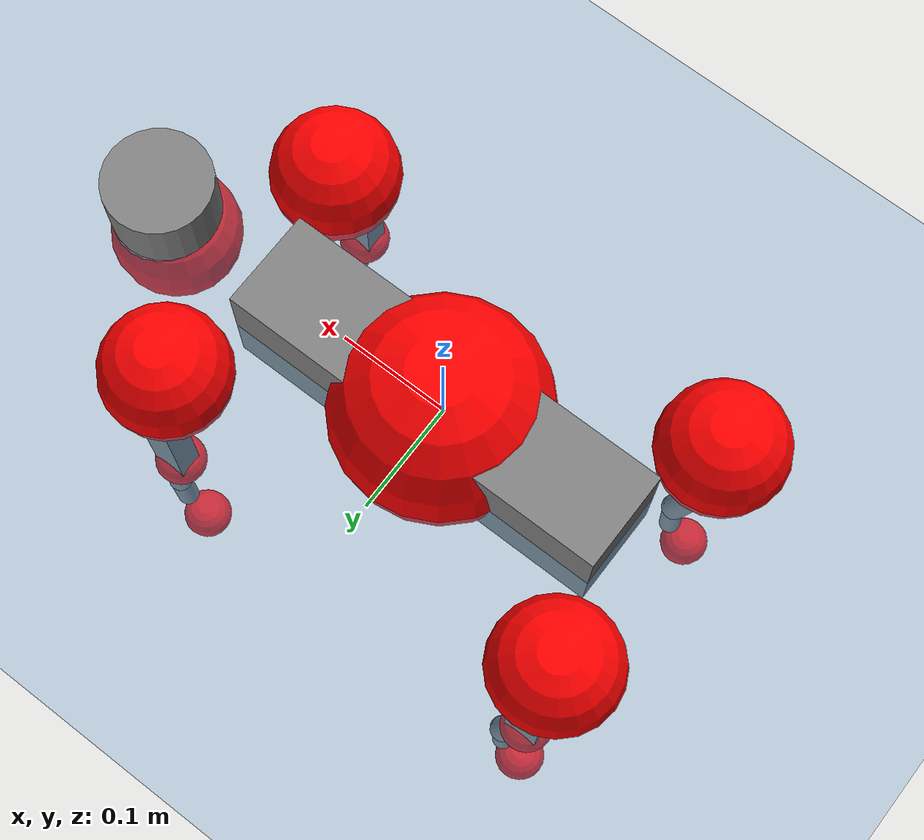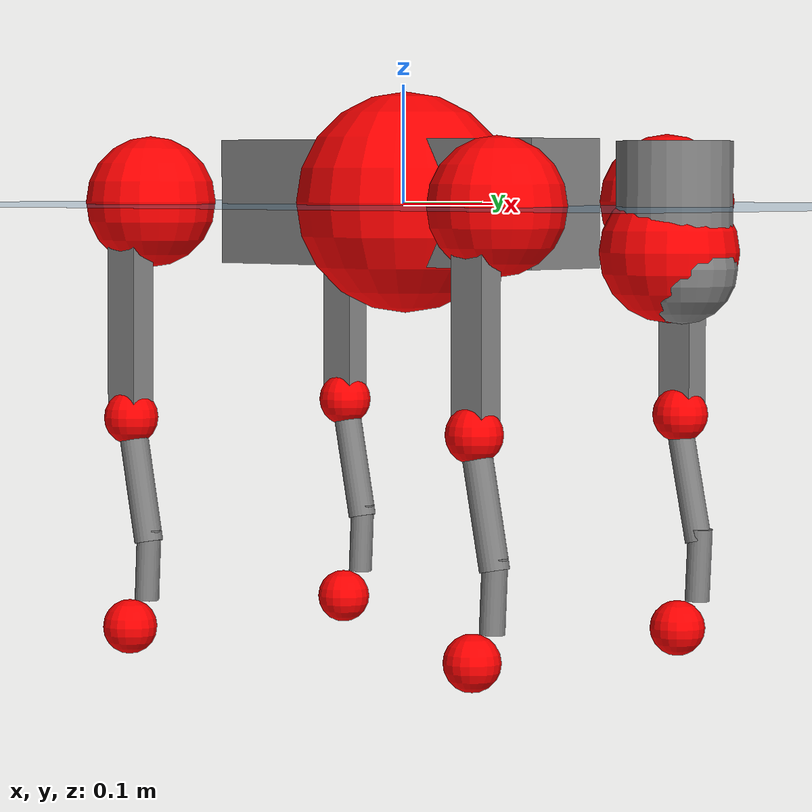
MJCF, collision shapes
<mujoco model="go2">
  <compiler angle="radian" assetdir="assets" balanceinertia="true" inertiafromgeom="false"/>

  <option timestep="0.005" density="1.2" viscosity="2e-05"/>

  <size nkey="1"/>

  <visual>
    <quality shadowsize="8192"/>
    <map shadowclip="0.5"/>
  </visual>

  <default>
    <default class="/">
      <geom contype="0" conaffinity="0" group="1" solref="-1000 -80"/>
      <site size="0.01 0.005 0.005" group="5"/>
      <general forcelimited="true" biastype="affine" gainprm="20" biasprm="0 -20 -0.5"/>
      <default class="go2">
        <joint armature="0.01" damping="0.01" frictionloss="0.2"/>
        <geom condim="1" margin="0.001"/>
        <default class="visual">
          <geom type="mesh" group="2"/>
        </default>
        <default class="collision">
          <geom group="3"/>
          <default class="foot">
            <geom size="0.022 0 0" condim="6" priority="1" friction="0.8 0.02 0.01" solimp="0.015 1 0.022"/>
          </default>
        </default>
        <default class="reward_collision_sphere">
          <geom group="5" rgba="1 0 0 1"/>
        </default>
      </default>
    </default>
  </default>

  <asset>
    <texture type="skybox" colorspace="auto" name="//unnamed_texture_0" builtin="gradient" rgb1="0.95 0.95 0.95" rgb2="0.95 0.95 0.95" width="100" height="600"/>
    <texture type="2d" colorspace="auto" name="texplane" builtin="checker" rgb1="0.345 0.575 0.748" rgb2="0.345 0.575 0.748" markrgb="1 1 1" width="512" height="512"/>
    <material name="MatPlane" class="/" texture="texplane" texuniform="true" texrepeat="2 2" specular="0.9"/>
    <material name="metal" class="/" rgba="0.9 0.95 0.95 1"/>
    <material name="black" class="/" rgba="0 0 0 1"/>
    <material name="white" class="/"/>
    <material name="gray" class="/" rgba="0.671705 0.692426 0.77427 1"/>
    <mesh name="base_0" class="/" file="base_0.obj"/>
    <mesh name="base_1" class="/" file="base_1.obj"/>
    <mesh name="base_2" class="/" file="base_2.obj"/>
    <mesh name="base_3" class="/" file="base_3.obj"/>
    <mesh name="base_4" class="/" file="base_4.obj"/>
    <mesh name="hip_0" class="/" file="hip_0.obj"/>
    <mesh name="hip_1" class="/" file="hip_1.obj"/>
    <mesh name="thigh_0" class="/" file="thigh_0.obj"/>
    <mesh name="thigh_1" class="/" file="thigh_1.obj"/>
    <mesh name="thigh_mirror_0" class="/" file="thigh_mirror_0.obj"/>
    <mesh name="thigh_mirror_1" class="/" file="thigh_mirror_1.obj"/>
    <mesh name="calf_0" class="/" file="calf_0.obj"/>
    <mesh name="calf_1" class="/" file="calf_1.obj"/>
    <mesh name="calf_mirror_0" class="/" file="calf_mirror_0.obj"/>
    <mesh name="calf_mirror_1" class="/" file="calf_mirror_1.obj"/>
    <mesh name="foot" class="/" file="foot.obj"/>
  </asset>

  <worldbody>
    <geom name="floor" class="/" size="100 100 0.125" type="plane" group="0" material="MatPlane"/>
    <light name="toplight_shadow" class="/" pos="0 0 5" dir="0.0990148 0.0990148 -0.990148" type="directional" ambient="0.04 0.04 0.04" diffuse="0.55 0.55 0.55" specular="0.12 0.12 0.12"/>
    <light name="toplight_fill" class="/" pos="0 0 5" dir="0.0990148 0.0990148 -0.990148" type="directional" castshadow="false" ambient="0.04 0.04 0.04" diffuse="0.3 0.3 0.3" specular="0.08 0.08 0.08"/>
    <body name="trunk" childclass="go2" pos="0.0016166 1.42158e-05 0.000961187" quat="1 0.000137987 0.000184614 0.000506661">
      <inertial pos="0.0197216 -0.00116455 -0.0051097" quat="-0.00139555 0.713709 -0.00360958 0.700432" mass="5.43981" diaginertia="0.10962 0.073629 0.0104127"/>
      <joint name="//unnamed_joint_0" type="free" armature="0" damping="0" frictionloss="0"/>
      <geom name="//unnamed_geom_1" class="visual" material="black" mesh="base_0"/>
      <geom name="//unnamed_geom_2" class="visual" material="black" mesh="base_1"/>
      <geom name="//unnamed_geom_3" class="visual" material="black" mesh="base_2"/>
      <geom name="//unnamed_geom_4" class="visual" material="white" mesh="base_3"/>
      <geom name="//unnamed_geom_5" class="visual" material="gray" mesh="base_4"/>
      <geom name="trunk_1" class="collision" size="0.175499 0.0436182 0.0531815" type="box"/>
      <geom name="trunk_2" class="collision" size="0.0466504 0.0419854" pos="0.286908 0 0.00846278" type="cylinder"/>
      <geom name="trunk_3" class="collision" size="0.0438514" pos="0.294961 0 -0.0507767"/>
      <geom name="//unnamed_geom_9" class="reward_collision_sphere" size="0.0933009"/>
      <geom name="//unnamed_geom_10" class="reward_collision_sphere" size="0.0559805" pos="0.281874 0 -0.0380825"/>
      <site name="imu" pos="-0.0264133 -0.00433218 0.0405052" size="0.00933009"/>
      <camera name="track" pos="0 -1.89211 0" quat="0.707107 0.707107 0 0" mode="trackcom"/>
      <camera name="ego_camera" pos="0.314088 0 0.0380825" quat="-0.5 -0.5 0.5 0.5"/>
      <body name="FL_hip" pos="0.193936 0.0437133 0.00112061" quat="1 -0.000269432 -0.000183829 0.000402561">
        <inertial pos="-0.00538367 0.00227955 -0.000858727" quat="0.495667 0.499867 0.505597 0.498817" mass="0.558598" diaginertia="0.000935026 0.000447546 0.000208012"/>
        <joint name="FL_hip_joint" pos="0 0 0" axis="0.999916 -0.00112072 -0.012934" stiffness="0.00365213" range="-1.01945 1.04062" armature="0.00925097" damping="0.000342511" frictionloss="0.185425"/>
        <geom name="//unnamed_geom_11" class="visual" material="metal" mesh="hip_0"/>
        <geom name="//unnamed_geom_12" class="visual" material="gray" mesh="hip_1"/>
        <geom name="//unnamed_geom_13" class="collision" size="0.0429184 0.0186602" pos="0 0.0756844 0" quat="0.707107 0.707107 0 0" type="cylinder"/>
        <geom name="//unnamed_geom_14" class="reward_collision_sphere" size="0.0559805" pos="0 0.0662238 0"/>
        <body name="FL_thigh" pos="-0.00152313 0.0896449 0.00161921" quat="1 0.000147586 7.6877e-05 -9.78323e-05">
          <inertial pos="-0.00421091 -0.0204097 -0.0285436" quat="0.829523 0.0847053 -0.0200985 0.551646" mass="0.938817" diaginertia="0.00608912 0.00443613 0.000390434"/>
          <joint name="FL_thigh_joint" pos="0 0 0" axis="-0.00550532 0.99997 -0.00541698" range="-1.58736 3.49097" armature="0.00963817" damping="0.003331" frictionloss="0.193282"/>
          <geom name="//unnamed_geom_15" class="visual" material="metal" mesh="thigh_0"/>
          <geom name="//unnamed_geom_16" class="visual" material="gray" mesh="thigh_1"/>
          <geom name="//unnamed_geom_17" class="collision" size="0.0993655 0.0114294 0.0158612" pos="0 0 -0.0901286" quat="0.707107 0 0.707107 0" type="box"/>
          <body name="FL_calf" pos="-0.000243837 -0.00194663 -0.180469" quat="1 -1.86703e-05 0.000140752 -0.000319547">
            <inertial pos="0.00604824 -0.000584247 -0.1195" quat="0.711326 0.000841678 -0.000374081 0.702861" mass="0.196096" diaginertia="0.00158841 0.00112507 2.34392e-05"/>
            <joint name="FL_calf_joint" pos="0 0 0" axis="-0.00258961 0.999996 -0.000783943" range="-2.74672 -0.836982" armature="0.00893611" damping="0.000742052" frictionloss="0.178265"/>
            <geom name="//unnamed_geom_18" class="visual" material="gray" mesh="calf_0"/>
            <geom name="//unnamed_geom_19" class="visual" material="black" mesh="calf_1"/>
            <geom name="FL_calf0" class="collision" size="0.0111961 0.0559805" pos="0.00805355 0 -0.0507767" quat="0.994493 0 -0.104807 0" type="cylinder"/>
            <geom name="//unnamed_geom_21" class="collision" size="0.0102631 0.0303228" pos="0.0201339 0 -0.125249" quat="0.999688 0 0.0249974 0" type="cylinder"/>
            <geom name="//unnamed_geom_22" class="visual" pos="0 0 -0.180257" quat="1 0 0 0" material="black" mesh="foot"/>
            <geom name="FL_foot" class="foot" size="0.0173792" pos="-0.00201339 0 -0.180257"/>
            <geom name="//unnamed_geom_24" class="reward_collision_sphere" size="0.0233252"/>
            <geom name="//unnamed_geom_25" class="reward_collision_sphere" size="0.0233252" pos="-0.00201339 0 -0.180257"/>
            <site name="FL_foot" class="foot" pos="-0.00201339 0 -0.180257" size="0.00933009"/>
          </body>
        </body>
      </body>
      <body name="FR_hip" pos="0.19585 -0.0438278 -0.00121006" quat="1 9.48724e-06 1.62856e-05 -1.51188e-05">
        <inertial pos="-0.00609726 -0.00250146 -0.000274226" quat="0.499203 0.503551 0.499988 0.497237" mass="0.549701" diaginertia="0.000923848 0.000456034 0.000211912"/>
        <joint name="FR_hip_joint" pos="0 0 0" axis="1 -0.000304411 -0.000634121" stiffness="0.00572186" range="-1.0637 1.05078" armature="0.00916425" damping="0.0163789" frictionloss="0.181623"/>
        <geom name="//unnamed_geom_26" class="visual" pos="0 8.69211e-10 3.72823e-08" quat="4.63268e-05 1 0 0" material="metal" mesh="hip_0"/>
        <geom name="//unnamed_geom_27" class="visual" pos="0 1.4091e-09 -9.22133e-08" quat="4.63268e-05 1 0 0" material="gray" mesh="hip_1"/>
        <geom name="//unnamed_geom_28" class="collision" size="0.0429184 0.0186602" pos="0 -0.0756844 0" quat="0.707107 0.707107 0 0" type="cylinder"/>
        <geom name="//unnamed_geom_29" class="reward_collision_sphere" size="0.0559805" pos="0 -0.0662238 0"/>
        <body name="FR_thigh" pos="0.000489878 -0.0921691 5.03553e-05" quat="1 -1.43605e-05 -1.32851e-05 8.128e-05">
          <inertial pos="-0.00447886 0.0211575 -0.0277419" quat="0.550052 -0.0195163 0.0865229 0.830407" mass="0.939397" diaginertia="0.00620741 0.00451196 0.000388169"/>
          <joint name="FR_thigh_joint" pos="0 0 0" axis="-0.00281397 -0.999992 -0.00283304" stiffness="0.000238242" range="-3.50192 1.57497" armature="0.0092606" damping="0.0135083" frictionloss="0.177829"/>
          <geom name="//unnamed_geom_30" class="visual" material="metal" mesh="thigh_mirror_0"/>
          <geom name="//unnamed_geom_31" class="visual" material="gray" mesh="thigh_mirror_1"/>
          <geom name="//unnamed_geom_32" class="collision" size="0.0993655 0.0114294 0.0158612" pos="0 0 -0.0901286" quat="0.707107 0 0.707107 0" type="box"/>
          <body name="FR_calf" pos="-0.000404134 -0.00103015 -0.179035" quat="1 1.67343e-05 -3.37215e-05 -3.9612e-05">
            <inertial pos="0.0062133 0.000718262 -0.120009" quat="0.703429 -0.00778411 0.0043302 0.710709" mass="0.196699" diaginertia="0.00153898 0.00110847 2.31143e-05"/>
            <joint name="FR_calf_joint" pos="0 0 0" axis="-0.00567011 -0.99998 0.00286736" range="0.835583 2.71845" armature="0.00963549" damping="0.0105356" frictionloss="0.195078"/>
            <geom name="//unnamed_geom_33" class="visual" material="gray" mesh="calf_mirror_0"/>
            <geom name="//unnamed_geom_34" class="visual" material="black" mesh="calf_mirror_1"/>
            <geom name="FR_calf0" class="collision" size="0.0121291 0.0559805" pos="0.0100669 0 -0.0507767" quat="0.995004 0 -0.0998334 0" type="cylinder"/>
            <geom name="//unnamed_geom_36" class="collision" size="0.0102631 0.0303228" pos="0.0201339 0 -0.125249" quat="0.999688 0 0.0249974 0" type="cylinder"/>
            <geom name="//unnamed_geom_37" class="visual" pos="0 0 -0.180257" quat="1 0 0 0" material="black" mesh="foot"/>
            <geom name="FR_foot" class="foot" size="0.0230475" pos="-0.00201339 0 -0.180257"/>
            <geom name="//unnamed_geom_39" class="reward_collision_sphere" size="0.0233252"/>
            <geom name="//unnamed_geom_40" class="reward_collision_sphere" size="0.0233252" pos="-0.00201339 0 -0.180257"/>
            <site name="FR_foot" class="foot" pos="-0.00201339 0 -0.180257" size="0.00933009"/>
          </body>
        </body>
      </body>
      <body name="RL_hip" pos="-0.194483 0.044215 -0.000113576" quat="1 7.73569e-05 -2.09251e-05 3.94401e-06">
        <inertial pos="0.00471326 0.00354356 0.000257537" quat="0.505587 0.501992 0.500161 0.492162" mass="0.560688" diaginertia="0.000919129 0.00045454 0.000211523"/>
        <joint name="RL_hip_joint" pos="0 0 0" axis="-0.999804 0.0143422 -0.0136627" range="-1.05742 1.06062" armature="0.00916442" damping="0.0175254" frictionloss="0.194357"/>
        <geom name="//unnamed_geom_41" class="visual" pos="-1.39747e-09 0 -2.73937e-07" quat="4.63268e-05 0 1 0" material="metal" mesh="hip_0"/>
        <geom name="//unnamed_geom_42" class="visual" pos="-2.26547e-09 0 -2.42943e-07" quat="4.63268e-05 0 1 0" material="gray" mesh="hip_1"/>
        <geom name="//unnamed_geom_43" class="collision" size="0.0429184 0.0186602" pos="0 0.0756844 0" quat="0.707107 0.707107 0 0" type="cylinder"/>
        <geom name="//unnamed_geom_44" class="reward_collision_sphere" size="0.0559805" pos="0 0.0662238 0"/>
        <body name="RL_thigh" pos="0.000172332 0.0892962 0.0005211" quat="1 1.48948e-05 -0.00016104 0.000191928">
          <inertial pos="-0.0036563 -0.0207719 -0.0273714" quat="0.829703 0.0882152 -0.0191806 0.550857" mass="0.948684" diaginertia="0.00611288 0.00444214 0.000378064"/>
          <joint name="RL_thigh_joint" pos="0 0 0" axis="-0.00062764 1 -0.00037217" stiffness="0.00252844" range="-0.524534 4.53496" armature="0.00930332" damping="0.0128349" frictionloss="0.185906"/>
          <geom name="//unnamed_geom_45" class="visual" material="metal" mesh="thigh_0"/>
          <geom name="//unnamed_geom_46" class="visual" material="gray" mesh="thigh_1"/>
          <geom name="//unnamed_geom_47" class="collision" size="0.0993655 0.0114294 0.0158612" pos="0 0 -0.0901286" quat="0.707107 0 0.707107 0" type="box"/>
          <body name="RL_calf" pos="7.5305e-05 -0.000289229 -0.181625" quat="1 8.10793e-05 -0.000135308 -8.91051e-05">
            <inertial pos="0.0070135 0.0010622 -0.119752" quat="0.713171 0.00302331 -0.00214724 0.70098" mass="0.194528" diaginertia="0.00154517 0.00109808 2.24495e-05"/>
            <joint name="RL_calf_joint" pos="0 0 0" axis="0.000459574 0.99999 -0.00439898" range="-2.72377 -0.855079" armature="0.00896534" damping="0.00750888" frictionloss="0.199723"/>
            <geom name="//unnamed_geom_48" class="visual" material="gray" mesh="calf_0"/>
            <geom name="//unnamed_geom_49" class="visual" material="black" mesh="calf_1"/>
            <geom name="RL_calf0" class="collision" size="0.0121291 0.0559805" pos="0.0100669 0 -0.0507767" quat="0.995004 0 -0.0998334 0" type="cylinder"/>
            <geom name="//unnamed_geom_51" class="collision" size="0.0102631 0.0303228" pos="0.0201339 0 -0.125249" quat="0.999688 0 0.0249974 0" type="cylinder"/>
            <geom name="//unnamed_geom_52" class="visual" pos="0 0 -0.180257" quat="1 0 0 0" material="black" mesh="foot"/>
            <geom name="RL_foot" class="foot" size="0.0175334" pos="-0.00201339 0 -0.180257"/>
            <geom name="//unnamed_geom_54" class="reward_collision_sphere" size="0.0233252"/>
            <geom name="//unnamed_geom_55" class="reward_collision_sphere" size="0.0233252" pos="-0.00201339 0 -0.180257"/>
            <site name="RL_foot" class="foot" pos="-0.00201339 0 -0.180257" size="0.00933009"/>
          </body>
        </body>
      </body>
      <body name="RR_hip" pos="-0.195506 -0.0433951 -2.73634e-05" quat="1 -0.000428564 0.000621742 -2.37078e-05">
        <inertial pos="0.00664362 -0.00194832 -0.00126978" quat="0.500418 0.496061 0.497944 0.505526" mass="0.550129" diaginertia="0.000913823 0.000452793 0.000207517"/>
        <joint name="RR_hip_joint" pos="0 0 0" axis="-0.999963 0.00381484 0.00774189" range="-1.06355 1.0558" armature="0.00978304" damping="0.00993378" frictionloss="0.190454"/>
        <geom name="//unnamed_geom_56" class="visual" pos="1.39537e-09 8.69211e-10 -3.11219e-07" quat="2.14617e-09 4.63268e-05 4.63268e-05 -1" material="metal" mesh="hip_0"/>
        <geom name="//unnamed_geom_57" class="visual" pos="2.27066e-09 1.4091e-09 -1.50729e-07" quat="2.14617e-09 4.63268e-05 4.63268e-05 -1" material="gray" mesh="hip_1"/>
        <geom name="//unnamed_geom_58" class="collision" size="0.0429184 0.0186602" pos="0 -0.0756844 0" quat="0.707107 0.707107 0 0" type="cylinder"/>
        <geom name="//unnamed_geom_59" class="reward_collision_sphere" size="0.0559805" pos="0 -0.0662238 0"/>
        <body name="RR_thigh" pos="-0.000142142 -0.0908958 -0.00274539" quat="1 3.11966e-06 -6.03106e-06 -9.9874e-06">
          <inertial pos="-0.0041122 0.0213274 -0.0277294" quat="0.551394 -0.0195949 0.0847113 0.829702" mass="0.929476" diaginertia="0.00611852 0.004402 0.000381717"/>
          <joint name="RR_thigh_joint" pos="0 0 0" axis="0.00294119 -0.999964 0.00791842" range="-4.54123 0.538126" armature="0.00917247" damping="0.0128141" frictionloss="0.1902"/>
          <geom name="//unnamed_geom_60" class="visual" material="metal" mesh="thigh_mirror_0"/>
          <geom name="//unnamed_geom_61" class="visual" material="gray" mesh="thigh_mirror_1"/>
          <geom name="//unnamed_geom_62" class="collision" size="0.0993655 0.0114294 0.0158612" pos="0 0 -0.0901286" quat="0.707107 0 0.707107 0" type="box"/>
          <body name="RR_calf" pos="0.000110683 0.000633572 -0.181661" quat="1 -3.53328e-05 -0.000124724 -4.55738e-06">
            <inertial pos="0.00629592 0.00111719 -0.119881" quat="0.701797 -0.00506111 -0.00205766 0.712357" mass="0.196379" diaginertia="0.00152777 0.00110759 2.32113e-05"/>
            <joint name="RR_calf_joint" pos="0 0 0" axis="0.00964242 -0.999953 0.000438421" range="0.842206 2.72174" armature="0.00942122" damping="0.0137002" frictionloss="0.18884"/>
            <geom name="//unnamed_geom_63" class="visual" material="gray" mesh="calf_mirror_0"/>
            <geom name="//unnamed_geom_64" class="visual" material="black" mesh="calf_mirror_1"/>
            <geom name="RR_calf0" class="collision" size="0.0121291 0.0559805" pos="0.0100669 0 -0.0507767" quat="0.995004 0 -0.0998334 0" type="cylinder"/>
            <geom name="//unnamed_geom_66" class="collision" size="0.0102631 0.0303228" pos="0.0201339 0 -0.125249" quat="0.999688 0 0.0249974 0" type="cylinder"/>
            <geom name="//unnamed_geom_67" class="visual" pos="0 0 -0.180257" quat="1 0 0 0" material="black" mesh="foot"/>
            <geom name="RR_foot" class="foot" size="0.0219168" pos="-0.00201339 0 -0.180257"/>
            <geom name="//unnamed_geom_69" class="reward_collision_sphere" size="0.0233252"/>
            <geom name="//unnamed_geom_70" class="reward_collision_sphere" size="0.0233252" pos="-0.00201339 0 -0.180257"/>
            <site name="RR_foot" class="foot" pos="-0.00201339 0 -0.180257" size="0.00933009"/>
          </body>
        </body>
      </body>
    </body>
  </worldbody>

  <contact>
    <pair class="/" geom1="floor" geom2="FL_foot" name="//unnamed_contact_0"/>
    <pair class="/" geom1="floor" geom2="FR_foot" name="//unnamed_contact_1"/>
    <pair class="/" geom1="floor" geom2="RL_foot" name="//unnamed_contact_2"/>
    <pair class="/" geom1="floor" geom2="RR_foot" name="//unnamed_contact_3"/>
  </contact>

  <actuator>
    <general name="FL_hip" class="/" joint="FL_hip_joint" forcerange="-22.025 22.025" gainprm="18.394" biasprm="0 -18.394 -0.46756"/>
    <general name="FL_thigh" class="/" joint="FL_thigh_joint" forcerange="-22.8719 22.8719" gainprm="18.394" biasprm="0 -18.394 -0.46756"/>
    <general name="FL_calf" class="/" joint="FL_calf_joint" forcerange="-41.3774 41.3774" gainprm="18.394" biasprm="0 -18.394 -0.46756"/>
    <general name="FR_hip" class="/" joint="FR_hip_joint" forcerange="-22.2963 22.2963" gainprm="18.394" biasprm="0 -18.394 -0.46756"/>
    <general name="FR_thigh" class="/" joint="FR_thigh_joint" forcerange="-21.3536 21.3536" gainprm="18.394" biasprm="0 -18.394 -0.46756"/>
    <general name="FR_calf" class="/" joint="FR_calf_joint" forcerange="-42.4692 42.4692" gainprm="18.394" biasprm="0 -18.394 -0.46756"/>
    <general name="RL_hip" class="/" joint="RL_hip_joint" forcerange="-23.256 23.256" gainprm="18.394" biasprm="0 -18.394 -0.46756"/>
    <general name="RL_thigh" class="/" joint="RL_thigh_joint" forcerange="-22.9316 22.9316" gainprm="18.394" biasprm="0 -18.394 -0.46756"/>
    <general name="RL_calf" class="/" joint="RL_calf_joint" forcerange="-40.5139 40.5139" gainprm="18.394" biasprm="0 -18.394 -0.46756"/>
    <general name="RR_hip" class="/" joint="RR_hip_joint" forcerange="-22.4157 22.4157" gainprm="18.394" biasprm="0 -18.394 -0.46756"/>
    <general name="RR_thigh" class="/" joint="RR_thigh_joint" forcerange="-23.0379 23.0379" gainprm="18.394" biasprm="0 -18.394 -0.46756"/>
    <general name="RR_calf" class="/" joint="RR_calf_joint" forcerange="-43.0064 43.0064" gainprm="18.394" biasprm="0 -18.394 -0.46756"/>
  </actuator>

  <sensor>
    <gyro site="imu" name="imu_angular_velocity"/>
    <velocimeter site="imu" name="imu_linear_velocity"/>
    <framelinvel objtype="site" objname="FL_foot" name="FL_foot_global_linear_velocity"/>
    <framelinvel objtype="site" objname="FR_foot" name="FR_foot_global_linear_velocity"/>
    <framelinvel objtype="site" objname="RL_foot" name="RL_foot_global_linear_velocity"/>
    <framelinvel objtype="site" objname="RR_foot" name="RR_foot_global_linear_velocity"/>
  </sensor>

  <keyframe>
    <key name="home" qpos="0 0 0.325 1 0 0 0 0.1 0.8 -1.5 -0.1 -0.8 1.5 -0.1 0.8 -1.5 0.1 -0.8 1.5"/>
  </keyframe>
</mujoco>
